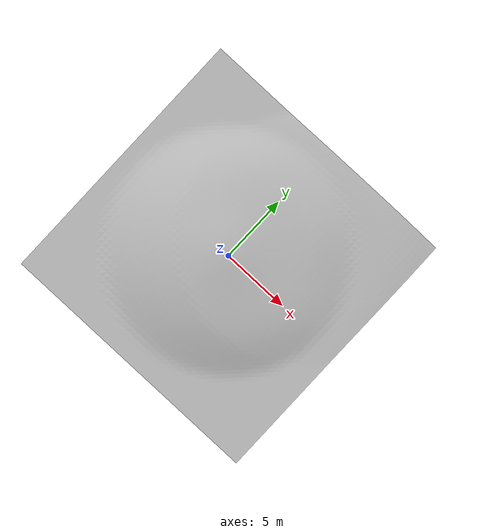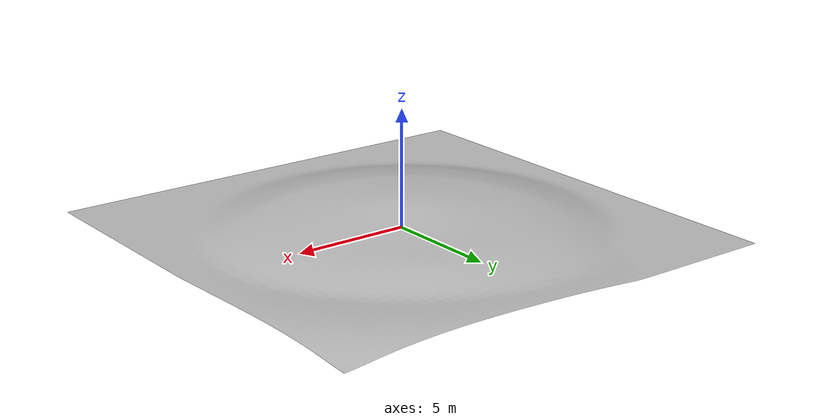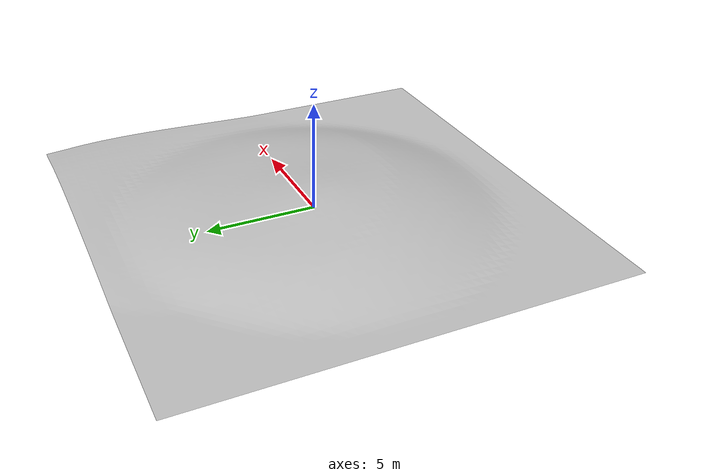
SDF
<?xml version="1.0"?>
<sdf version="1.6">
  <model name="my_hill">
    <static>true</static>
    <link name="link">
      <collision name="collision">
        <geometry><mesh><uri>model://my_hill/meshes/Untitled.stl</uri></mesh></geometry>
      </collision>
      <visual name="visual">
        <geometry><mesh><uri>model://my_hill/meshes/Untitled.stl</uri></mesh></geometry>
      </visual>
    </link>
  </model>
</sdf>
